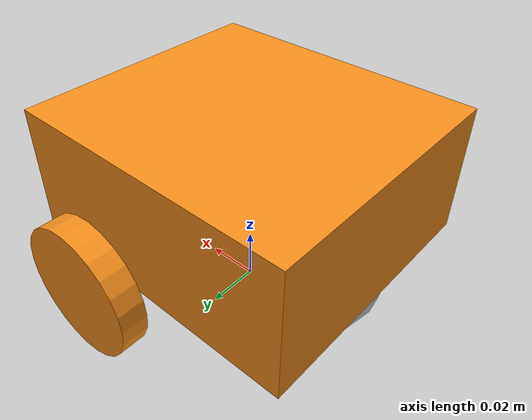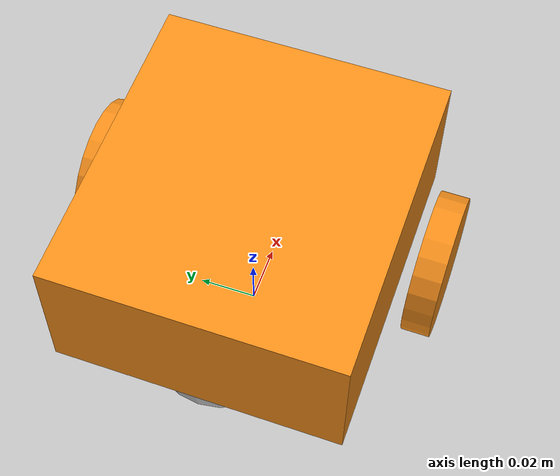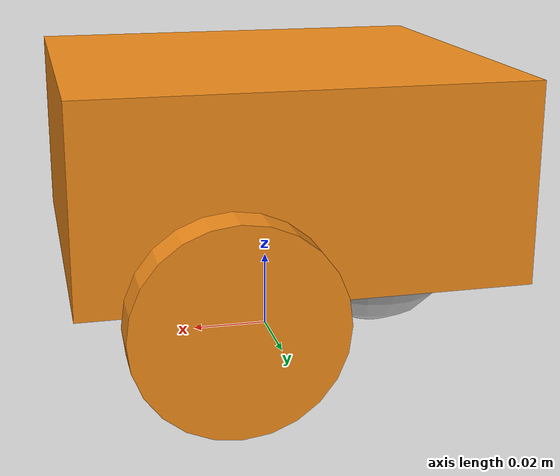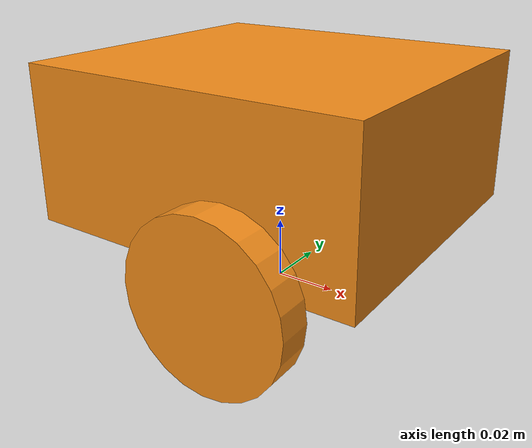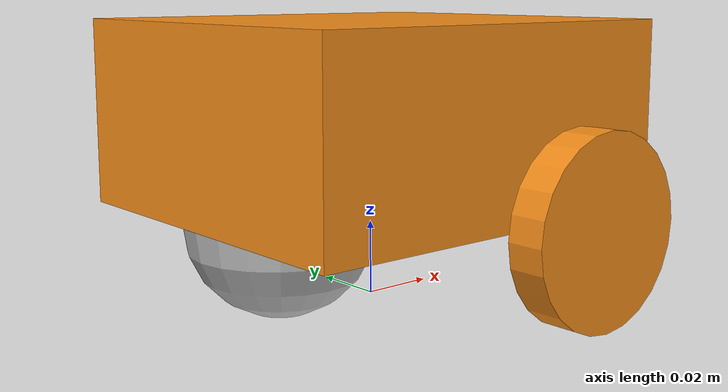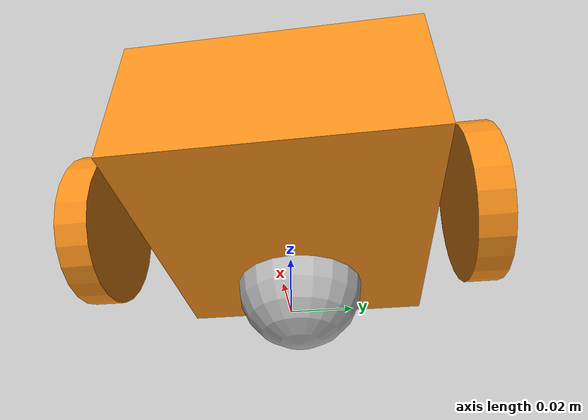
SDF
<?xml version='1.0'?>
<sdf version='1.4'>
  <model name="bitbot">
    <static>false</static>

    <link name='chassis'>
      <inertial>
        <mass>100</mass>
        <inertia>
          <ixx>1.216667</ixx>       <!-- for a box: ixx = 0.083 * mass * (y*y + z*z) -->
          <ixy>0.0</ixy>         <!-- for a box: ixy = 0 -->
          <ixz>0.0</ixz>         <!-- for a box: ixz = 0 -->
          <iyy>1.216667</iyy>       <!-- for a box: iyy = 0.083 * mass * (x*x + z*z) -->
          <iyz>0.0</iyz>         <!-- for a box: iyz = 0 -->
          <izz>2.016667</izz>       <!-- for a box: izz = 0.083 * mass * (x*x + y*y) -->
        </inertia>
      </inertial>
      <pose>0 0 .05 0 0 0</pose>
      <collision name='collision'>
        <geometry>
          <box>
            <size>.11 .11 .05</size>
          </box>
        </geometry>
      </collision>
      <visual name='visual'>
        <geometry>
          <box>
            <size>.11 .1 .05</size>
          </box>
        </geometry>
        <material>
            <lighting>1</lighting>
            <script>
              <uri>file://media/materials/scripts/gazebo.material</uri>
              <name>Gazebo/Orange</name>
            </script>
          </material>
      </visual>

      <collision name='caster_collision'>
        <pose>-0.03 0 -0.025 0 0 0</pose>
        <geometry>
          <sphere>
            <radius>.025</radius>
          </sphere>
        </geometry>

        <surface>
          <friction>
            <ode>
              <mu>0</mu>
              <mu2>0</mu2>
              <slip1>1.0</slip1>
              <slip2>1.0</slip2>
            </ode>
          </friction>
        </surface>
      </collision>

      <visual name='caster_visual'>
        <pose>-0.03 0 -0.025 0 0 0</pose>
        <geometry>
          <sphere>
            <radius>.025</radius>
          </sphere>
        </geometry>
      </visual>
    </link>

    <link name="left_wheel">
      <pose>0.02 0.06 0.025 0 1.5707 1.5707</pose>
      <inertial>
          <mass>10.0</mass>
          <inertia>
            <ixx>0.00164583</ixx>
            <iyy>0.00164583</iyy>
            <izz>0.003125</izz>
            <ixy>0</ixy>
            <ixz>0</ixz>
            <iyz>0</iyz>
          </inertia>
        </inertial>

      <collision name="collision">
        <geometry>
          <cylinder>
            <radius>.025</radius>
            <length>.01</length>
          </cylinder>
        </geometry>
      </collision>
      <visual name="visual">
        <geometry>
          <cylinder>
            <radius>.025</radius>
            <length>.01</length>
          </cylinder>
        </geometry>
        <material>
            <lighting>1</lighting>
            <script>
              <uri>file://media/materials/scripts/gazebo.material</uri>
              <name>Gazebo/Orange</name>
            </script>
          </material>
      </visual>
    </link>
    <link name="right_wheel">
      <pose>0.02 -0.06 0.025 0 1.5707 1.5707</pose>
      <inertial>
          <mass>10.0</mass>
          <inertia>
            <ixx>0.00164583</ixx>
            <iyy>0.00164583</iyy>
            <izz>0.003125</izz>
            <ixy>0</ixy>
            <ixz>0</ixz>
            <iyz>0</iyz>
          </inertia>
        </inertial>
        <collision name="collision">
        <geometry>
          <cylinder>
            <radius>.025</radius>
            <length>.01</length>
          </cylinder>
        </geometry>
      </collision>
      <visual name="visual">
        <geometry>
          <cylinder>
            <radius>.025</radius>
            <length>.01</length>
          </cylinder>
        </geometry>
        <material>
            <lighting>1</lighting>
            <script>
              <uri>file://media/materials/scripts/gazebo.material</uri>
              <name>Gazebo/Orange</name>
            </script>
          </material>
      </visual>
    </link>
    <joint type="revolute" name="left_wheel_joint">
      <pose>0 0 -0.005 0 0 0</pose>
      <child>left_wheel</child>
      <parent>chassis</parent>
      <axis>
        <xyz>0 1 0</xyz>
      </axis>
    </joint>

    <joint type="revolute" name="right_wheel_joint">
      <pose>0 0 0.005 0 0 0</pose>
      <child>right_wheel</child>
      <parent>chassis</parent>
      <axis>
        <xyz>0 1 0</xyz>
      </axis>
    </joint>

    <plugin name="differential_drive_controller" filename="libgazebo_ros_diff_drive.so">
    <alwaysOn>true</alwaysOn>
    <updateRate>20</updateRate>
    <leftJoint>right_wheel_joint</leftJoint>
    <rightJoint>left_wheel_joint</rightJoint>
    <wheelSeparation>0.12</wheelSeparation>
    <wheelDiameter>0.05</wheelDiameter>
    <torque>1</torque>
    <commandTopic>cmd_vel</commandTopic>
    <odometryTopic>odom</odometryTopic>
    <odometryFrame>odom</odometryFrame>
    <robotBaseFrame>base_footprint</robotBaseFrame>
    </plugin>

  </model>
</sdf>
